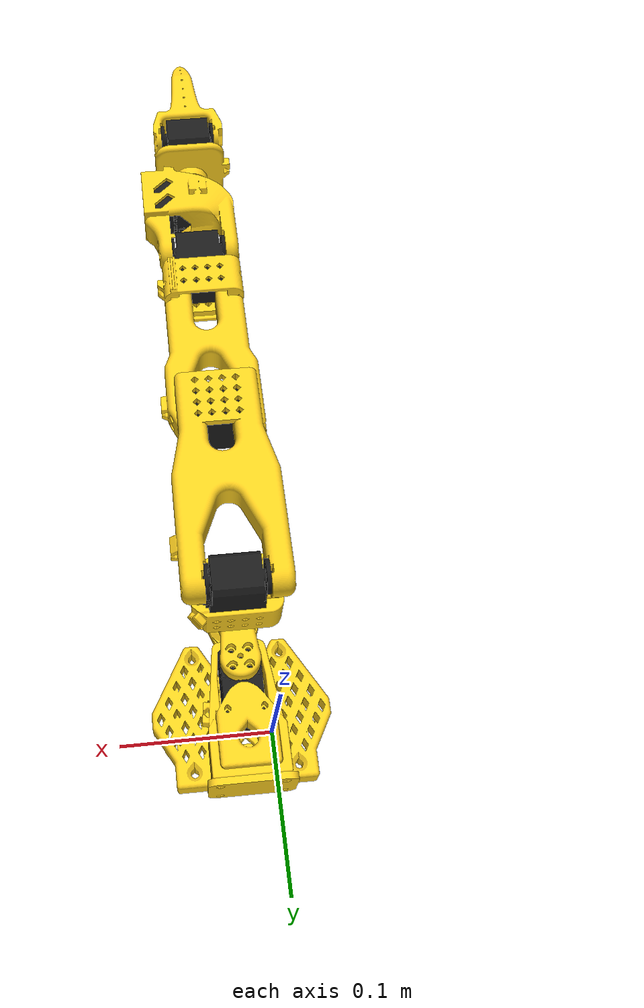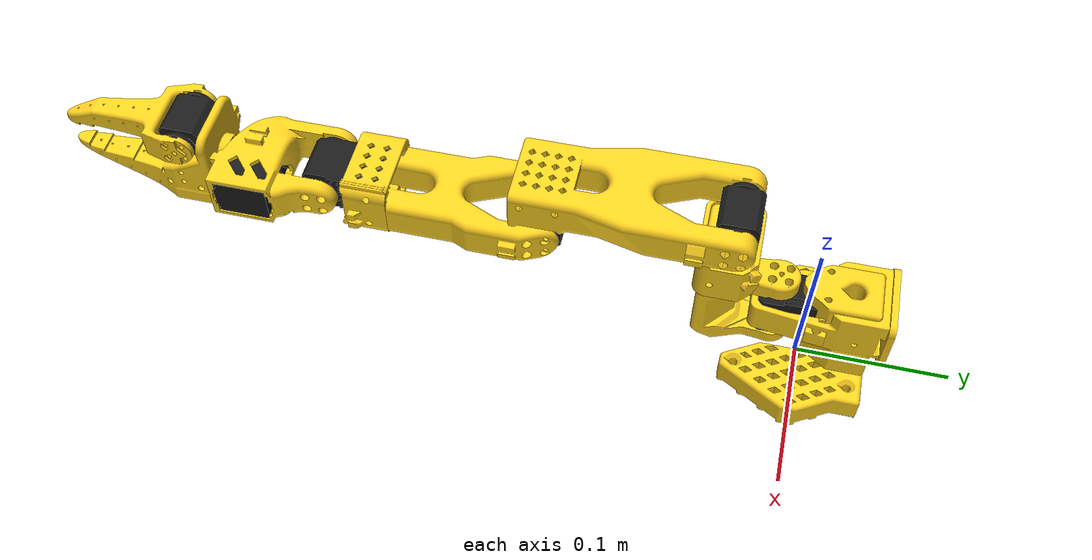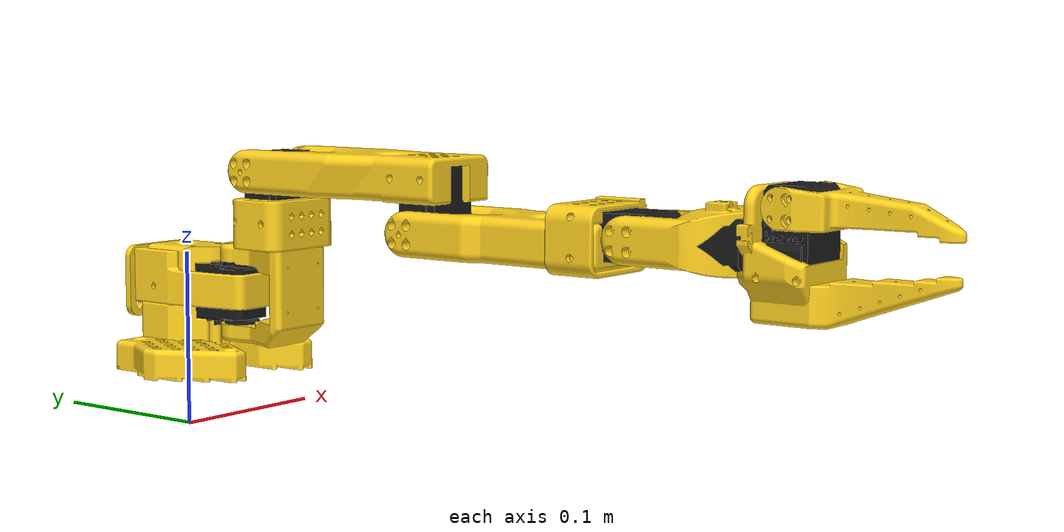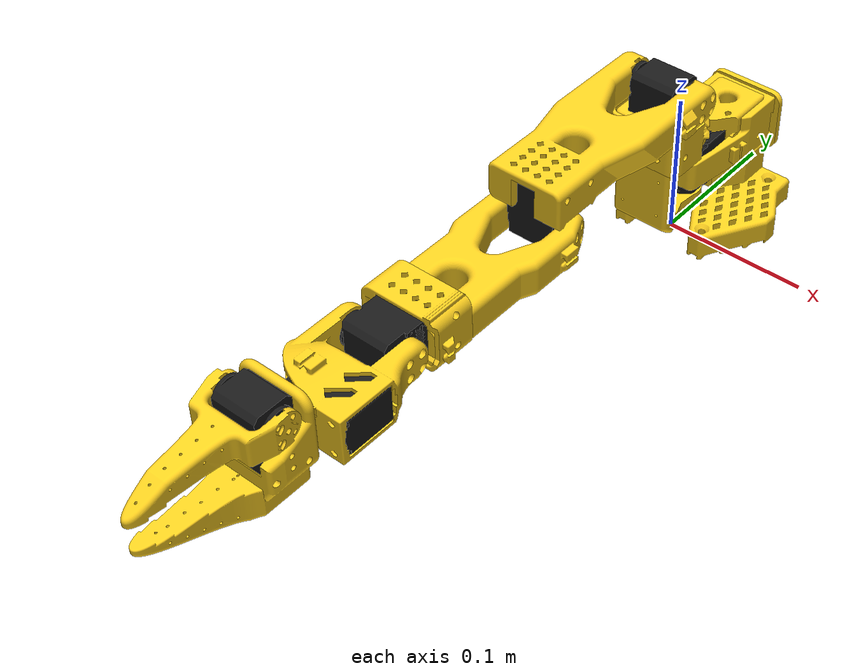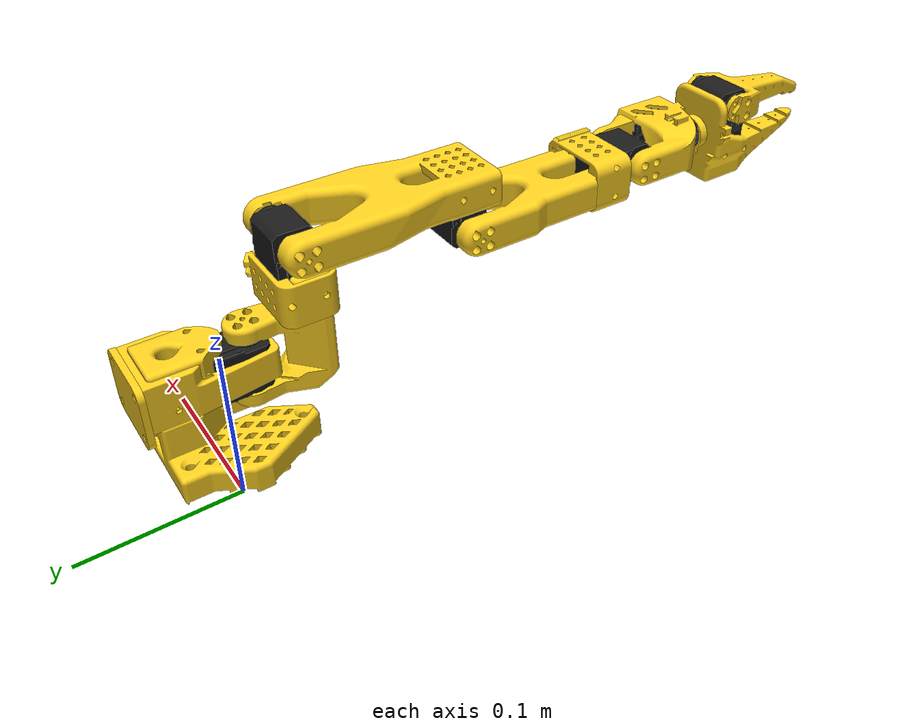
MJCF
<?xml version="1.0" ?>
<!-- Generated using onshape-to-robot -->
<!-- Onshape https://cad.onshape.com/documents/7715cc284bb430fe6dab4ffd/w/4fd0791b683777b02f8d975a/e/bbd5da878b987933c7940f7d -->
<mujoco model="so101_old_calib">
  <compiler angle="radian" meshdir="assets" autolimits="true"/>
  <default>
    <default class="so101_old_calib">
      <joint damping="1" frictionloss="0.1" armature="0.005"/>
      <position kp="50"/>
      <default class="visual">
        <geom type="mesh" contype="0" conaffinity="0" group="2"/>
      </default>
      <default class="collision">
        <geom group="3"/>
      </default>
    </default>
  </default>
  <!-- Additional joints_properties.xml -->
  <default>
    <default class="sts3215">
      <geom contype="0" conaffinity="0"/>
      <joint damping="0.60" frictionloss="0.052" armature="0.028"/>
      <position kp="17.8"/>
    </default>
    <default class="backlash">
      <!-- +/- 0.5° of backlash -->
      <joint damping="0.01" frictionloss="0" armature="0.01" limited="true" range="-0.008726646259971648 0.008726646259971648"/>
    </default>
  </default>
  <worldbody>
    <!-- Link base -->
    <body name="base" pos="0 0 0" quat="1 0 0 0" childclass="so101_old_calib">
      <inertial pos="0.020739 0.00204287 0.065966" mass="0.147" fullinertia="0.000136117 0.000114686 0.000130364 4.59787e-07 9.75275e-08 -4.97151e-06"/>
      <!-- Part base_motor_holder_so101_v1 -->
      <geom type="mesh" class="visual" pos="0.0206915 0.0221255 0.0300817" quat="0.707107 0.707107 7.85046e-16 8.68107e-16" mesh="base_motor_holder_so101_v1" material="base_motor_holder_so101_v1_material"/>
      <!-- Part base_so101_v2 -->
      <geom type="mesh" class="visual" pos="0.0207909 0.0221255 0.0300817" quat="0.707107 0.707107 -0 -0" mesh="base_so101_v2" material="base_so101_v2_material"/>
      <!-- Part sts3215_03a_v1 -->
      <geom type="mesh" class="visual" pos="0.0207909 -0.0105745 0.0761817" quat="0.707107 -7.69919e-16 8.95976e-16 -0.707107" mesh="sts3215_03a_v1" material="sts3215_03a_v1_material"/>
      <!-- Part waveshare_mounting_plate_so101_v2 -->
      <geom type="mesh" class="visual" pos="0.0205915 0.0467435 0.0798817" quat="0.707107 0.707107 -3.34318e-15 5.1276e-15" mesh="waveshare_mounting_plate_so101_v2" material="waveshare_mounting_plate_so101_v2_material"/>
      <!-- Frame base -->
      <site group="3" name="base" pos="0.020791 0.0157608 0.0324817" quat="0 1 0 0"/>
      <!-- Link shoulder -->
      <body name="shoulder" pos="0.0207909 -0.0230745 0.0948817" quat="7.88629e-16 -0.707107 -0.707107 7.69003e-16">
        <!-- Joint from base to shoulder -->
        <joint axis="0 0 1" name="shoulder_pan" type="hinge" range="-1.9198621771937616 1.9198621771937634" class="sts3215"/>
        <inertial pos="-0.0307604 -1.66727e-05 -0.0252713" mass="0.100006" fullinertia="8.3759e-05 8.10403e-05 2.39783e-05 7.55525e-08 -1.16342e-06 1.54663e-07"/>
        <!-- Part sts3215_03a_v1_2 -->
        <geom type="mesh" class="visual" pos="-0.0303992 0.000422241 -0.0417" quat="0.5 0.5 0.5 -0.5" mesh="sts3215_03a_v1" material="sts3215_03a_v1_material"/>
        <geom type="mesh" class="collision" pos="-0.0303992 0.000422241 -0.0417" quat="0.5 0.5 0.5 -0.5" mesh="sts3215_03a_v1" material="sts3215_03a_v1_material"/>
        <!-- Part motor_holder_so101_base_v1 -->
        <geom type="mesh" class="visual" pos="-0.0675992 -0.000177759 0.0158499" quat="0.5 0.5 -0.5 0.5" mesh="motor_holder_so101_base_v1" material="motor_holder_so101_base_v1_material"/>
        <geom type="mesh" class="collision" pos="-0.0675992 -0.000177759 0.0158499" quat="0.5 0.5 -0.5 0.5" mesh="motor_holder_so101_base_v1" material="motor_holder_so101_base_v1_material"/>
        <!-- Part rotation_pitch_so101_v1 -->
        <geom type="mesh" class="visual" pos="0.0122008 2.22413e-05 0.0464" quat="0.707107 -0.707107 0 0" mesh="rotation_pitch_so101_v1" material="rotation_pitch_so101_v1_material"/>
        <geom type="mesh" class="collision" pos="0.0122008 2.22413e-05 0.0464" quat="0.707107 -0.707107 0 0" mesh="rotation_pitch_so101_v1" material="rotation_pitch_so101_v1_material"/>
        <!-- Link upper_arm -->
        <body name="upper_arm" pos="-0.0303992 -0.0182778 -0.0542" quat="0.5 -0.5 0.5 0.5">
          <!-- Joint from shoulder to upper_arm -->
          <joint axis="0 0 1" name="shoulder_lift" type="hinge" range="-3.31612557878923 0.1745329251994294" class="sts3215"/>
          <inertial pos="-0.00838224 0.0898471 0.0184089" mass="0.103" fullinertia="0.000147318 4.08002e-05 0.000142487 1.97819e-05 8.97326e-09 4.03016e-08"/>
          <!-- Part sts3215_03a_v1_3 -->
          <geom type="mesh" class="visual" pos="-0.0155 0.11257 0.0187" quat="4.91381e-16 3.1572e-16 -1 6.21545e-16" mesh="sts3215_03a_v1" material="sts3215_03a_v1_material"/>
          <geom type="mesh" class="collision" pos="-0.0155 0.11257 0.0187" quat="4.91381e-16 3.1572e-16 -1 6.21545e-16" mesh="sts3215_03a_v1" material="sts3215_03a_v1_material"/>
          <!-- Part upper_arm_so101_v1 -->
          <geom type="mesh" class="visual" pos="0.012 0.065085 0.0182" quat="5.77339e-30 0.707107 -0.707107 -1.0267e-29" mesh="upper_arm_so101_v1" material="upper_arm_so101_v1_material"/>
          <geom type="mesh" class="collision" pos="0.012 0.065085 0.0182" quat="5.77339e-30 0.707107 -0.707107 -1.0267e-29" mesh="upper_arm_so101_v1" material="upper_arm_so101_v1_material"/>
          <!-- Link lower_arm -->
          <body name="lower_arm" pos="-0.028 0.11257 1.24466e-16" quat="2.34133e-16 -3.33458e-16 -3.62568e-16 -1">
            <!-- Joint from upper_arm to lower_arm -->
            <joint axis="0 0 1" name="elbow_flex" type="hinge" range="-0.17453292519941607 3.14159265358981" class="sts3215"/>
            <inertial pos="-0.00324376 -0.0980701 0.0182831" mass="0.104" fullinertia="0.000159844 2.87438e-05 0.00014529 -7.41152e-06 4.90188e-08 1.26409e-06"/>
            <!-- Part under_arm_so101_v1 -->
            <geom type="mesh" class="visual" pos="0.032 -0.0648499 0.0182" quat="7.0875e-26 0.707107 0.707107 -7.0875e-26" mesh="under_arm_so101_v1" material="under_arm_so101_v1_material"/>
            <geom type="mesh" class="collision" pos="0.032 -0.0648499 0.0182" quat="7.0875e-26 0.707107 0.707107 -7.0875e-26" mesh="under_arm_so101_v1" material="under_arm_so101_v1_material"/>
            <!-- Part motor_holder_so101_wrist_v1 -->
            <geom type="mesh" class="visual" pos="0.032 -0.0648499 0.018" quat="1.01856e-15 -0.707107 -0.707107 2.26153e-16" mesh="motor_holder_so101_wrist_v1" material="motor_holder_so101_wrist_v1_material"/>
            <geom type="mesh" class="collision" pos="0.032 -0.0648499 0.018" quat="1.01856e-15 -0.707107 -0.707107 2.26153e-16" mesh="motor_holder_so101_wrist_v1" material="motor_holder_so101_wrist_v1_material"/>
            <!-- Part sts3215_03a_v1_4 -->
            <geom type="mesh" class="visual" pos="-0.0052 -0.1224 0.0187" quat="1.64704e-15 0.707107 -0.707107 1.29806e-15" mesh="sts3215_03a_v1" material="sts3215_03a_v1_material"/>
            <geom type="mesh" class="collision" pos="-0.0052 -0.1224 0.0187" quat="1.64704e-15 0.707107 -0.707107 1.29806e-15" mesh="sts3215_03a_v1" material="sts3215_03a_v1_material"/>
            <!-- Link wrist -->
            <body name="wrist" pos="-0.0052 -0.1349 3.40439e-16" quat="1 -3.94784e-16 1.66357e-15 3.78078e-09">
              <!-- Joint from lower_arm to wrist -->
              <joint axis="0 0 1" name="wrist_flex" type="hinge" range="-1.6580627969561947 1.6580627818330316" class="sts3215"/>
              <inertial pos="-0.000103312 -0.0386143 0.0281156" mass="0.079" fullinertia="3.68263e-05 2.5391e-05 2.1e-05 1.7893e-08 -5.28128e-08 3.6412e-06"/>
              <!-- Part sts3215_03a_no_horn_v1 -->
              <geom type="mesh" class="visual" pos="0 -0.0424 0.0306" quat="0.5 0.5 0.5 -0.5" mesh="sts3215_03a_no_horn_v1" material="sts3215_03a_no_horn_v1_material"/>
              <geom type="mesh" class="collision" pos="0 -0.0424 0.0306" quat="0.5 0.5 0.5 -0.5" mesh="sts3215_03a_no_horn_v1" material="sts3215_03a_no_horn_v1_material"/>
              <!-- Part wrist_roll_pitch_so101_v2 -->
              <geom type="mesh" class="visual" pos="-2.77556e-17 -0.028 0.0181" quat="0.5 -0.5 -0.5 -0.5" mesh="wrist_roll_pitch_so101_v2" material="wrist_roll_pitch_so101_v2_material"/>
              <geom type="mesh" class="collision" pos="-2.77556e-17 -0.028 0.0181" quat="0.5 -0.5 -0.5 -0.5" mesh="wrist_roll_pitch_so101_v2" material="wrist_roll_pitch_so101_v2_material"/>
              <!-- Link gripper -->
              <body name="gripper" pos="2.77556e-17 -0.0611 0.0181" quat="3.31663e-08 -3.31663e-08 -0.707107 -0.707107">
                <!-- Joint from wrist to gripper -->
                <joint axis="0 0 1" name="wrist_roll" type="hinge" range="-2.7925268969992394 2.792526709382615" class="sts3215"/>
                <inertial pos="0.000213627 0.000245138 -0.025187" mass="0.087" fullinertia="2.75087e-05 4.33657e-05 3.45059e-05 -3.35241e-07 -5.7352e-06 -5.17847e-08"/>
                <!-- Part sts3215_03a_v1_5 -->
                <geom type="mesh" class="visual" pos="0.0077 0.0001 -0.0234" quat="0.707107 -0.707107 6.48145e-15 1.60424e-15" mesh="sts3215_03a_v1" material="sts3215_03a_v1_material"/>
                <geom type="mesh" class="collision" pos="0.0077 0.0001 -0.0234" quat="0.707107 -0.707107 6.48145e-15 1.60424e-15" mesh="sts3215_03a_v1" material="sts3215_03a_v1_material"/>
                <!-- Part wrist_roll_follower_so101_v1 -->
                <geom type="mesh" class="visual" pos="1.11022e-16 -0.000218214 0.000949706" quat="0 1 0 0" mesh="wrist_roll_follower_so101_v1" material="wrist_roll_follower_so101_v1_material"/>
                <geom type="mesh" class="collision" pos="1.11022e-16 -0.000218214 0.000949706" quat="0 1 0 0" mesh="wrist_roll_follower_so101_v1" material="wrist_roll_follower_so101_v1_material"/>
                <!-- Frame gripper -->
                <site group="3" name="gripper" pos="-0.0079 -0.000218121 -0.0981274" quat="0.5 -0.5 0.5 -0.5"/>
                <!-- Link moving_jaw_so101_v1 -->
                <body name="moving_jaw_so101_v1" pos="0.0202 0.0188 -0.0234" quat="0.707107 0.707107 0 -4.88629e-17">
                  <!-- Joint from gripper to moving_jaw_so101_v1 -->
                  <joint axis="0 0 1" name="gripper" type="hinge" range="-0.17453292519941963 1.7453292519943429" class="sts3215"/>
                  <inertial pos="-0.00157495 -0.0300244 0.0192755" mass="0.012" fullinertia="6.61427e-06 1.89032e-06 5.28738e-06 -3.19807e-07 -5.90717e-09 -1.09945e-07"/>
                  <!-- Part moving_jaw_so101_v1 -->
                  <geom type="mesh" class="visual" pos="0 1.89351e-17 0.0189" quat="1 0 1.11022e-16 8.14512e-24" mesh="moving_jaw_so101_v1" material="moving_jaw_so101_v1_material"/>
                  <geom type="mesh" class="collision" pos="0 1.89351e-17 0.0189" quat="1 0 1.11022e-16 8.14512e-24" mesh="moving_jaw_so101_v1" material="moving_jaw_so101_v1_material"/>
                </body>
              </body>
            </body>
          </body>
        </body>
      </body>
    </body>
  </worldbody>
  <asset>
    <mesh file="motor_holder_so101_wrist_v1.stl"/>
    <mesh file="moving_jaw_so101_v1.stl"/>
    <mesh file="wrist_roll_follower_so101_v1.stl"/>
    <mesh file="rotation_pitch_so101_v1.stl"/>
    <mesh file="base_so101_v2.stl"/>
    <mesh file="motor_holder_so101_base_v1.stl"/>
    <mesh file="upper_arm_so101_v1.stl"/>
    <mesh file="sts3215_03a_v1.stl"/>
    <mesh file="under_arm_so101_v1.stl"/>
    <mesh file="waveshare_mounting_plate_so101_v2.stl"/>
    <mesh file="base_motor_holder_so101_v1.stl"/>
    <mesh file="wrist_roll_pitch_so101_v2.stl"/>
    <mesh file="sts3215_03a_no_horn_v1.stl"/>
    <material name="base_motor_holder_so101_v1_material" rgba="1 0.82 0.12 1"/>
    <material name="base_so101_v2_material" rgba="1 0.82 0.12 1"/>
    <material name="sts3215_03a_v1_material" rgba="0.1 0.1 0.1 1"/>
    <material name="waveshare_mounting_plate_so101_v2_material" rgba="1 0.82 0.12 1"/>
    <material name="motor_holder_so101_base_v1_material" rgba="1 0.82 0.12 1"/>
    <material name="rotation_pitch_so101_v1_material" rgba="1 0.82 0.12 1"/>
    <material name="upper_arm_so101_v1_material" rgba="1 0.82 0.12 1"/>
    <material name="under_arm_so101_v1_material" rgba="1 0.82 0.12 1"/>
    <material name="motor_holder_so101_wrist_v1_material" rgba="1 0.82 0.12 1"/>
    <material name="sts3215_03a_no_horn_v1_material" rgba="0.1 0.1 0.1 1"/>
    <material name="wrist_roll_pitch_so101_v2_material" rgba="1 0.82 0.12 1"/>
    <material name="wrist_roll_follower_so101_v1_material" rgba="1 0.82 0.12 1"/>
    <material name="moving_jaw_so101_v1_material" rgba="1 0.82 0.12 1"/>
  </asset>
  <actuator>
    <position class="sts3215" name="shoulder_pan" joint="shoulder_pan" forcerange="-3.35 3.35" ctrlrange="-1.91986 1.91986"/>
    <position class="sts3215" name="shoulder_lift" joint="shoulder_lift" forcerange="-3.35 3.35" ctrlrange="-3.31612 0.17453"/>
    <position class="sts3215" name="elbow_flex" joint="elbow_flex" forcerange="-3.35 3.35" ctrlrange="-0.17453 3.14159"/>
    <position class="sts3215" name="wrist_flex" joint="wrist_flex" forcerange="-3.35 3.35" ctrlrange="-1.65806 1.65806"/>
    <position class="sts3215" name="wrist_roll" joint="wrist_roll" forcerange="-3.35 3.35" ctrlrange="-2.79252 2.79252"/>
    <position class="sts3215" name="gripper" joint="gripper" forcerange="-3.35 3.35" ctrlrange="-0.17453 1.74533"/>
  </actuator>
  <equality/>
</mujoco>
